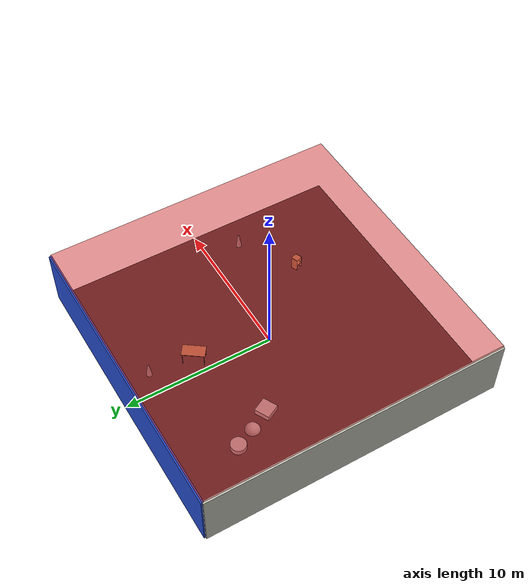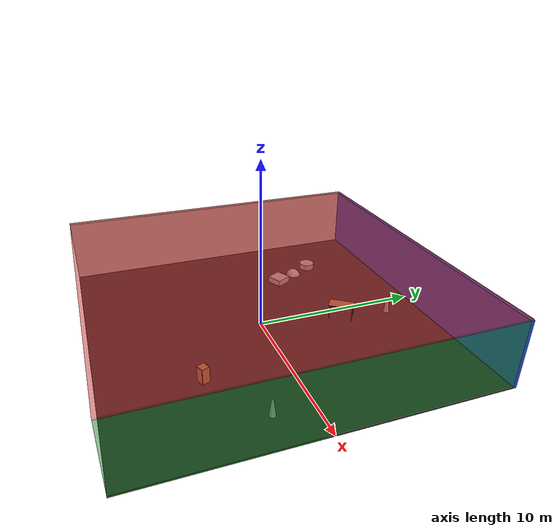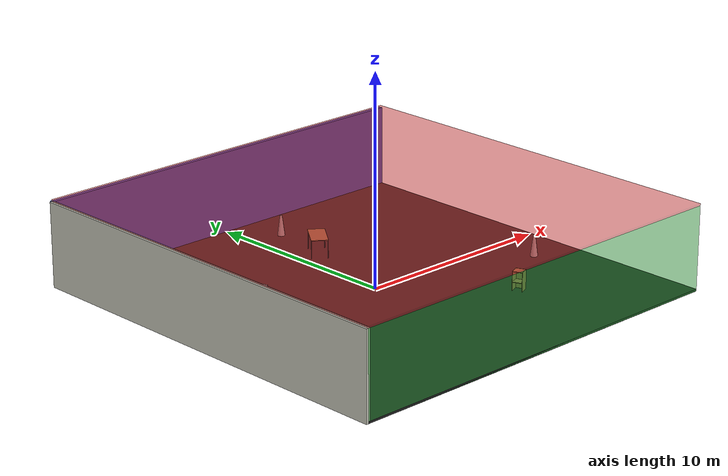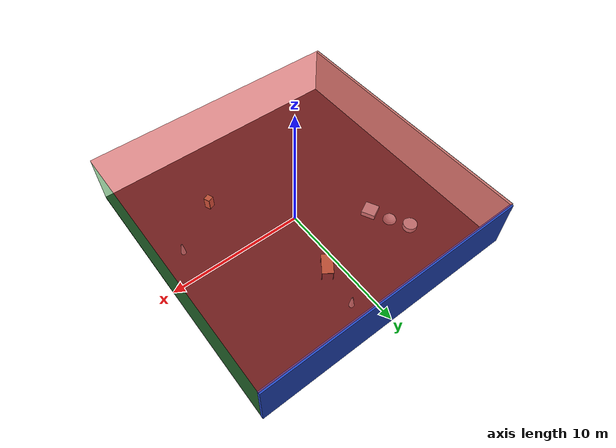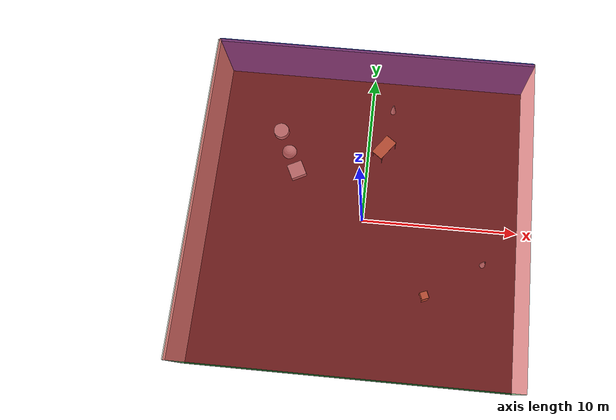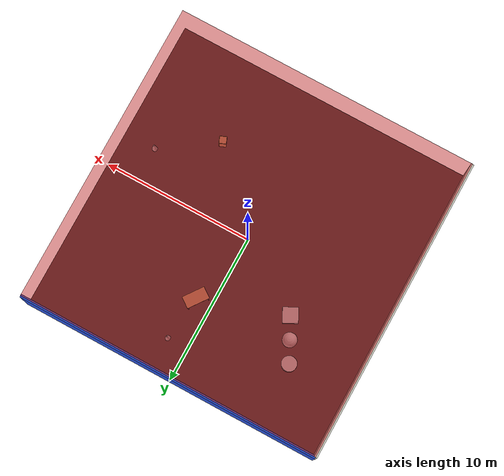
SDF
<sdf version="1.4">
 <world name="default">
  <physics type="ode">
   <max_step_size>0.001</max_step_size>
   <real_time_factor>1</real_time_factor>
   <real_time_update_rate>1000</real_time_update_rate>
   <gravity>0 0 -9.8</gravity>
  </physics>
  <scene><ambient>0.4 0.4 0.4 1</ambient><background>0.7 0.7 0.7 1</background><shadows>1</shadows></scene>
  <model name="Surrounding">
   <static>1</static>
   <link name="Ceiling">
    <collision name="Ceiling_Collision"><geometry><box><size>20 20 0.1</size></box></geometry></collision>
    <visual name="Ceiling_Visual">
     <geometry><box><size>20 20 0.1</size></box></geometry>
     <material>
      <script><uri>file://media/materials/scripts/gazebo.material</uri><name>Gazebo/RedTransparent</name></script>
     </material>
    </visual>
    <pose>0 0 4.05 0 0 0</pose>
   </link>
   <link name="Wall_South">
    <collision name="Wall_South_Collision">
     <geometry><box><size>20 0 4</size></box></geometry>
     <pose>0 0 2 0 -0 0</pose>
    </collision>
    <visual name="Wall_South_Visual">
     <pose>0 0 2 0 -0 0</pose>
     <geometry><box><size>20 0 4</size></box></geometry>
     <material>
      <script><uri>file://media/materials/scripts/gazebo.material</uri><name>Gazebo/GreenTransparent</name></script>
     </material>
    </visual>
    <velocity_decay><linear>0</linear><angular>0</angular></velocity_decay>
    <pose>0 -10 0 0 -0 0</pose>
   </link>
   <link name="Wall_East">
    <collision name="Wall_21_Collision">
     <geometry><box><size>20 0 4</size></box></geometry>
     <pose>0 0 2 0 -0 0</pose>
    </collision>
    <visual name="Wall_21_Visual">
     <pose>0 0 2 0 -0 0</pose>
     <geometry><box><size>20 0 4</size></box></geometry>
     <material>
      <script><uri>file://media/materials/scripts/gazebo.material</uri><name>Gazebo/GreenTransparent</name></script>
     </material>
    </visual>
    <velocity_decay><linear>0</linear><angular>0</angular></velocity_decay>
    <pose>10 0 0 0 -0 1.5708</pose>
   </link>
   <link name="Wall_North">
    <collision name="Wall_22_Collision">
     <geometry><box><size>20 0.2 4</size></box></geometry>
     <pose>0 0 2 0 -0 0</pose>
    </collision>
    <visual name="Wall_22_Visual">
     <pose>0 0 2 0 -0 0</pose>
     <geometry><box><size>20 0.2 4</size></box></geometry>
     <material>
      <script><uri>file://media/materials/scripts/gazebo.material</uri><name>Gazebo/BlueLaser</name></script>
     </material>
    </visual>
    <velocity_decay><linear>0</linear><angular>0</angular></velocity_decay>
    <pose>0 10 0 0 -0 0</pose>
   </link>
   <link name="Wall_West">
    <collision name="Wall_23_Collision">
     <geometry><box><size>20 0.2 4</size></box></geometry>
     <pose>0 0 2 0 -0 0</pose>
    </collision>
    <visual name="Wall_23_Visual">
     <pose>0 0 2 0 -0 0</pose>
     <geometry><box><size>20 0.2 4</size></box></geometry>
     <material>
      <script><uri>file://media/materials/scripts/gazebo.material</uri><name>Gazebo/PaintedWall</name></script>
     </material>
    </visual>
    <velocity_decay><linear>0</linear><angular>0</angular></velocity_decay>
    <pose>-10 0 0 0 0 -1.5708</pose>
   </link>
   <link name="Ground_link">
    <collision name="collision">
     <pose>0 0 .05 0 -0 0</pose>
     <geometry><box><size>20 20 0.1</size></box></geometry>
    </collision>
    <visual name="visual">
     <pose>0 0 .05 0 -0 0</pose>
     <geometry><box><size>20 20 0.1</size></box></geometry>
     <material>
      <script><uri>file://media/materials/scripts/gazebo.material</uri><name>Gazebo/Black</name></script>
     </material>
    </visual>
   </link>
   <static>1</static>
  </model>
  <spherical_coordinates>
   <surface_model>EARTH_WGS84</surface_model>
   <latitude_deg>0</latitude_deg>
   <longitude_deg>0</longitude_deg>
   <elevation>0</elevation>
   <heading_deg>0</heading_deg>
  </spherical_coordinates>
  <light name="lightball_0" type="diffuse">
   <diffuse>0.8 0.8 0.8 1</diffuse>
   <specular>0.2 0.2 0.2 1</specular>
   <attenuation>
    <range>100</range>
    <constant>0.7</constant>
    <linear>0.01</linear>
    <quadratic>0.001</quadratic>
   </attenuation>
   <direction>-0.5 0.1 -0.9</direction>
   <pose>1.18958835971 0.618118574183 2.50576553921 0 0 0</pose>
  </light>
  <light name="lightball_1" type="diffuse">
   <diffuse>0.8 0.8 0.8 1</diffuse>
   <specular>0.2 0.2 0.2 1</specular>
   <attenuation>
    <range>100</range>
    <constant>0.7</constant>
    <linear>0.01</linear>
    <quadratic>0.001</quadratic>
   </attenuation>
   <direction>-0.5 0.1 -0.9</direction>
   <pose>-6.6395286245 1.439385235 1.85552856069 0 0 0</pose>
  </light>
  <light name="lightball_2" type="diffuse">
   <diffuse>0.8 0.8 0.8 1</diffuse>
   <specular>0.2 0.2 0.2 1</specular>
   <attenuation>
    <range>100</range>
    <constant>0.7</constant>
    <linear>0.01</linear>
    <quadratic>0.001</quadratic>
   </attenuation>
   <direction>-0.5 0.1 -0.9</direction>
   <pose>-3.74298581585 -3.96442945538 1.57021954467 0 0 0</pose>
  </light>
  <include>
   <uri>model://textured_shapes</uri>
   <pose>-5.26838230398 4.27217158801 0 0 0 0.470322746362</pose>
  </include>
  <include><uri>model://table</uri><pose>1.01385269086 4.82887774003 0 0 0 0.941606582094</pose></include>
  <include>
   <uri>model://construction_cone</uri>
   <pose>1.39144552052 7.77453761315 0 0 0 1.94278834426</pose>
  </include>
  <include><uri>model://cabinet</uri><pose>4.30074969004 -4.63641796587 0 0 0 0.379932558685</pose></include>
  <include>
   <uri>model://construction_cone</uri>
   <pose>7.88910953038 -2.25308521575 0 0 0 2.22635250185</pose>
  </include>
 </world>
</sdf>

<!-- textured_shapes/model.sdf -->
<sdf version="1.6">
  <model name="textured_shapes">
    <pose>0 0 0.5 0 0 0</pose>
    <link name="box">
      <pose>0 -1.5 0 0 0 0</pose>
      <collision name="collision">
        <geometry>
          <box>
            <size>1 1 1</size>
          </box>
        </geometry>
      </collision>
      <visual name="visual">
        <geometry>
          <box>
            <size>1 1 1</size>
          </box>
        </geometry>
        <material>
          <script>
            <uri>model://../model_source/models/textured_shapes/materials/scripts</uri>
            <uri>model://../model_source/models/textured_shapes/materials/textures</uri>
            <name>TexturedShape/Squares</name>
          </script>
        </material>
      </visual>
    </link>
    <link name="sphere">
      <collision name="collision">
        <geometry>
          <sphere>
            <radius>0.5</radius>
          </sphere>
        </geometry>
      </collision>
      <visual name="visual">
        <geometry>
          <sphere>
            <radius>0.5</radius>
          </sphere>
        </geometry>
        <material>
          <script>
            <uri>model://../model_source/models/textured_shapes/materials/scripts</uri>
            <uri>model://../model_source/models/textured_shapes/materials/textures</uri>
            <name>TexturedShape/Squares</name>
          </script>
        </material>
      </visual>
    </link>
    <link name="cylinder">
      <pose>0 1.5 0 0 0 0</pose>
      <collision name="collision">
        <geometry>
          <cylinder>
            <radius>0.5</radius>
            <length>1</length>
          </cylinder>
        </geometry>
      </collision>
      <visual name="visual">
        <geometry>
          <cylinder>
            <radius>0.5</radius>
            <length>1</length>
          </cylinder>
        </geometry>
        <material>
          <script>
            <uri>model://../model_source/models/textured_shapes/materials/scripts</uri>
            <uri>model://../model_source/models/textured_shapes/materials/textures</uri>
            <name>TexturedShape/Squares</name>
          </script>
        </material>
      </visual>
    </link>
  </model>
</sdf>

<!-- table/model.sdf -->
<sdf version="1.5">
  <model name="table">
    <static>true</static>
    <link name="link">
      <collision name="surface">
        <pose>0 0 1.0 0 0 0</pose>
        <geometry>
          <box>
            <size>1.5 0.8 0.03</size>
          </box>
        </geometry>
        <surface>
          <friction>
            <ode>
              <mu>0.6</mu>
              <mu2>0.6</mu2>
            </ode>
          </friction>
        </surface>
      </collision>
      <visual name="visual1">
        <pose>0 0 1.0 0 0 0</pose>
        <geometry>
          <box>
            <size>1.5 0.8 0.03</size>
          </box>
        </geometry>
        <material>
          <script>
            <uri>model://media/materials/scripts/gazebo.material</uri>
            <name>Gazebo/Wood</name>
          </script>
        </material>
      </visual>
      <collision name="front_left_leg">
        <pose>0.68 0.38 0.5 0 0 0</pose>
        <geometry>
          <cylinder>
            <radius>0.02</radius>
            <length>1.0</length>
          </cylinder>
        </geometry>
      </collision>
      <visual name="front_left_leg">
        <pose>0.68 0.38 0.5 0 0 0</pose>
        <geometry>
          <cylinder>
            <radius>0.02</radius>
            <length>1.0</length>
          </cylinder>
        </geometry>
        <material>
          <script>
            <uri>model://media/materials/scripts/gazebo.material</uri>
            <name>Gazebo/Grey</name>
          </script>
        </material>
      </visual>
      <collision name="front_right_leg">
        <pose>0.68 -0.38 0.5 0 0 0</pose>
        <geometry>
          <cylinder>
            <radius>0.02</radius>
            <length>1.0</length>
          </cylinder>
        </geometry>
      </collision>
      <visual name="front_right_leg">
        <pose>0.68 -0.38 0.5 0 0 0</pose>
        <geometry>
          <cylinder>
            <radius>0.02</radius>
            <length>1.0</length>
          </cylinder>
        </geometry>
        <material>
          <script>
            <uri>model://media/materials/scripts/gazebo.material</uri>
            <name>Gazebo/Grey</name>
          </script>
        </material>
      </visual>
      <collision name="back_right_leg">
        <pose>-0.68 -0.38 0.5 0 0 0</pose>
        <geometry>
          <cylinder>
            <radius>0.02</radius>
            <length>1.0</length>
          </cylinder>
        </geometry>
      </collision>
      <visual name="back_right_leg">
        <pose>-0.68 -0.38 0.5 0 0 0</pose>
        <geometry>
          <cylinder>
            <radius>0.02</radius>
            <length>1.0</length>
          </cylinder>
        </geometry>
        <material>
          <script>
            <uri>model://media/materials/scripts/gazebo.material</uri>
            <name>Gazebo/Grey</name>
          </script>
        </material>
      </visual>
      <collision name="back_left_leg">
        <pose>-0.68 0.38 0.5 0 0 0</pose>
        <geometry>
          <cylinder>
            <radius>0.02</radius>
            <length>1.0</length>
          </cylinder>
        </geometry>
      </collision>
      <visual name="back_left_leg">
        <pose>-0.68 0.38 0.5 0 0 0</pose>
        <geometry>
          <cylinder>
            <radius>0.02</radius>
            <length>1.0</length>
          </cylinder>
        </geometry>
        <material>
          <script>
            <uri>model://media/materials/scripts/gazebo.material</uri>
            <name>Gazebo/Grey</name>
          </script>
        </material>
      </visual>
    </link>
  </model>
</sdf>

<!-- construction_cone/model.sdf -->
<sdf version="1.5">
  <model name="Construction Cone">
    <link name="link">
      <collision name="collision">
        <geometry>
          <mesh>
            <scale>10 10 10</scale>
            <uri>file://isr-testbed/construction_cone/meshes/construction_cone.dae</uri>
          </mesh>
        </geometry>
      </collision>
      <visual name="visual">
        <geometry>
          <mesh>
            <scale>10 10 10</scale>
            <uri>file://isr-testbed/construction_cone/meshes/construction_cone.dae</uri>
          </mesh>
        </geometry>
      </visual>
    </link>
  </model>
</sdf>

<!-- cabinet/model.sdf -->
<sdf version="1.5">
  <model name="cabinet">
    <static>true</static>
    <link name="cabinet_bottom_plate">
      <inertial>
        <pose>0 0 -1 0 0 0</pose>
        <inertia>
          <ixx>2.050000</ixx>
          <ixy>0</ixy>
          <ixz>0</ixz>
          <iyy>2.050000</iyy>
          <iyz>0</iyz>
          <izz>2.050000</izz>
        </inertia>
        <mass>25.000000</mass>
      </inertial>
      <collision name="cabinet_bottom_plate_geom">
        <pose>0 0 0.010000 0 0 0</pose>
        <geometry>
          <box>
            <size>0.450000 0.450000 0.020000</size>
          </box>
        </geometry>
      </collision>
      <visual name="cabinet_bottom_plate_geom_visual">
        <pose>0 0 0.010000 0 0 0</pose>
        <geometry>
          <box>
            <size>0.450000 0.450000 0.020000</size>
          </box>
        </geometry>
        <material>
          <script>
            <uri>model://media/materials/scripts/gazebo.material</uri>
            <name>Gazebo/Wood</name>
          </script>
        </material>
      </visual>
      <collision name="cabinet_bottom_plate_geom_cabinet_back_plate">
        <pose>0.235000 0 0.510000 0 0 0</pose>
        <geometry>
          <box>
            <size>0.020000 0.450000 1.020000</size>
          </box>
        </geometry>
      </collision>
      <visual name="cabinet_bottom_plate_geom_cabinet_back_plate_visual">
        <pose>0.235000 0 0.510000 0 0 0</pose>
        <geometry>
          <box>
            <size>0.020000 0.450000 1.020000</size>
          </box>
        </geometry>
        <material>
          <script>
            <uri>model://media/materials/scripts/gazebo.material</uri>
            <name>Gazebo/Wood</name>
          </script>
        </material>
      </visual>
      <collision name="cabinet_bottom_plate_geom_cabinet_left_plate">
        <pose>0 0.235000 0.510000 0 0 0</pose>
        <geometry>
          <box>
            <size>0.450000 0.020000 1.020000</size>
          </box>
        </geometry>
      </collision>
      <visual name="cabinet_bottom_plate_geom_cabinet_left_plate_visual">
        <pose>0 0.235000 0.510000 0 0 0</pose>
        <geometry>
          <box>
            <size>0.450000 0.020000 1.020000</size>
          </box>
        </geometry>
        <material>
          <script>
            <uri>model://media/materials/scripts/gazebo.material</uri>
            <name>Gazebo/Wood</name>
          </script>
        </material>
      </visual>
      <collision name="cabinet_bottom_plate_geom_cabinet_middle_plate">
        <pose>0 0 0.510000 0 0 0</pose>
        <geometry>
          <box>
            <size>0.450000 0.450000 0.020000</size>
          </box>
        </geometry>
      </collision>
      <visual name="cabinet_bottom_plate_geom_cabinet_middle_plate_visual">
        <pose>0 0 0.510000 0 0 0</pose>
        <geometry>
          <box>
            <size>0.450000 0.450000 0.020000</size>
          </box>
        </geometry>
        <material>
          <script>
            <uri>model://media/materials/scripts/gazebo.material</uri>
            <name>Gazebo/Wood</name>
          </script>
        </material>
      </visual>
      <collision name="cabinet_bottom_plate_geom_cabinet_right_plate">
        <pose>0 -0.235000 0.510000 0 0 0</pose>
        <geometry>
          <box>
            <size>0.450000 0.020000 1.020000</size>
          </box>
        </geometry>
      </collision>
      <visual name="cabinet_bottom_plate_geom_cabinet_right_plate_visual">
        <pose>0 -0.235000 0.510000 0 0 0</pose>
        <geometry>
          <box>
            <size>0.450000 0.020000 1.020000</size>
          </box>
        </geometry>
        <material>
          <script>
            <uri>model://media/materials/scripts/gazebo.material</uri>
            <name>Gazebo/Wood</name>
          </script>
        </material>
      </visual>
      <collision name="cabinet_bottom_plate_geom_cabinet_top_plate">
        <pose>0 0 1.010000 0 0 0</pose>
        <geometry>
          <box>
            <size>0.450000 0.450000 0.020000</size>
          </box>
        </geometry>
      </collision>
      <visual name="cabinet_bottom_plate_geom_cabinet_top_plate_visual">
        <pose>0 0 1.010000 0 0 0</pose>
        <geometry>
          <box>
            <size>0.450000 0.450000 0.020000</size>
          </box>
        </geometry>
        <material>
          <script>
            <uri>model://media/materials/scripts/gazebo.material</uri>
            <name>Gazebo/Wood</name>
          </script>
        </material>
      </visual>
    </link>
  </model>
</sdf>
